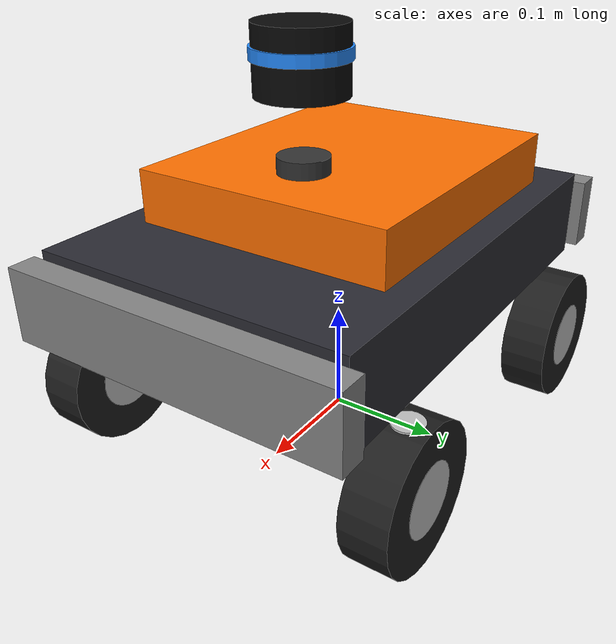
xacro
<?xml version="1.0"?>
<robot xmlns:xacro="http://www.ros.org/wiki/xacro" name="morphonav">

  <!-- ═══════════════════════════════════════════════
       ROBOT DIMENSIONS
       ═══════════════════════════════════════════════ -->
  <xacro:property name="chassis_l"    value="0.40"/>
  <xacro:property name="chassis_w"    value="0.28"/>
  <xacro:property name="chassis_h"    value="0.08"/>
  <xacro:property name="chassis_mass" value="4.0"/>

  <xacro:property name="wheel_r"    value="0.06"/>
  <xacro:property name="wheel_w"    value="0.04"/>
  <xacro:property name="wheel_mass" value="0.3"/>

  <xacro:property name="wheelbase"   value="0.28"/>
  <xacro:property name="track_width" value="0.30"/>
  <xacro:property name="steer_limit" value="0.6"/>

  <!-- chassis_z MUST equal 2*wheel_r + chassis_h/2 so tyres rest on ground.
       Previous value was 0.12 — wheels were 4 cm underground. -->
  <xacro:property name="chassis_z" value="${2*wheel_r + chassis_h/2}"/>

  <!-- ═══════════════════════════════════════════════
       MACROS
       ═══════════════════════════════════════════════ -->

  <!-- Wheel link: dark tyre + two silver hub discs for visual depth -->
  <xacro:macro name="wheel_link" params="name">
    <link name="${name}">
      <!-- outer tyre -->
      <visual>
        <geometry><cylinder radius="${wheel_r}" length="${wheel_w}"/></geometry>
        <origin xyz="0 0 0" rpy="${pi/2} 0 0"/>
        <material name="rubber"><color rgba="0.12 0.12 0.12 1.0"/></material>
      </visual>
      <!-- inner hub disc (positive Y face) -->
      <visual>
        <geometry><cylinder radius="${wheel_r*0.50}" length="${wheel_w*0.35}"/></geometry>
        <origin xyz="0 ${wheel_w*0.33} 0" rpy="${pi/2} 0 0"/>
        <material name="hub_silver"><color rgba="0.78 0.78 0.78 1.0"/></material>
      </visual>
      <!-- inner hub disc (negative Y face) -->
      <visual>
        <geometry><cylinder radius="${wheel_r*0.50}" length="${wheel_w*0.35}"/></geometry>
        <origin xyz="0 ${-wheel_w*0.33} 0" rpy="${pi/2} 0 0"/>
        <material name="hub_silver2"><color rgba="0.78 0.78 0.78 1.0"/></material>
      </visual>
      <collision>
        <geometry><cylinder radius="${wheel_r}" length="${wheel_w}"/></geometry>
        <origin xyz="0 0 0" rpy="${pi/2} 0 0"/>
      </collision>
      <inertial>
        <mass value="${wheel_mass}"/>
        <!-- solid cylinder, rolling axis = Y -->
        <inertia
          ixx="${wheel_mass*(3*wheel_r*wheel_r + wheel_w*wheel_w)/12}"
          iyy="${wheel_mass*wheel_r*wheel_r/2}"
          izz="${wheel_mass*(3*wheel_r*wheel_r + wheel_w*wheel_w)/12}"
          ixy="0" ixz="0" iyz="0"/>
      </inertial>
    </link>
  </xacro:macro>

  <!-- Steering hub: visible kingpin axle from pivot to wheel centre -->
  <xacro:macro name="steer_link" params="name">
    <link name="${name}">
      <visual>
        <geometry><cylinder radius="0.013" length="${wheel_r}"/></geometry>
        <origin xyz="0 0 ${-wheel_r/2}" rpy="0 0 0"/>
        <material name="axle_silver"><color rgba="0.75 0.75 0.75 1.0"/></material>
      </visual>
      <collision>
        <geometry><cylinder radius="0.013" length="${wheel_r}"/></geometry>
        <origin xyz="0 0 ${-wheel_r/2}" rpy="0 0 0"/>
      </collision>
      <inertial>
        <mass value="0.05"/>
        <inertia ixx="0.00002" iyy="0.00002" izz="0.00002"
                 ixy="0" ixz="0" iyz="0"/>
      </inertial>
    </link>
  </xacro:macro>

  <!-- ═══════════════════════════════════════════════
       BASE FRAMES
       ═══════════════════════════════════════════════ -->

  <link name="base_footprint"/>

  <joint name="base_joint" type="fixed">
    <parent link="base_footprint"/>
    <child  link="base_link"/>
    <origin xyz="0 0 ${chassis_z}" rpy="0 0 0"/>
  </joint>

  <!-- Main chassis: dark body + orange accent panel + front/rear bumper strips -->
  <link name="base_link">
    <!-- lower chassis plate -->
    <visual>
      <geometry><box size="${chassis_l} ${chassis_w} ${chassis_h}"/></geometry>
      <origin xyz="0 0 0" rpy="0 0 0"/>
      <material name="chassis_body"><color rgba="0.17 0.17 0.20 1.0"/></material>
    </visual>
    <!-- orange accent panel on top -->
    <visual>
      <geometry><box size="${chassis_l*0.68} ${chassis_w*0.82} 0.046"/></geometry>
      <origin xyz="-0.02 0 ${chassis_h/2 + 0.023}" rpy="0 0 0"/>
      <material name="accent"><color rgba="1.0 0.44 0.0 1.0"/></material>
    </visual>
    <!-- front bumper strip -->
    <visual>
      <geometry><box size="0.024 ${chassis_w + 0.022} ${chassis_h*0.80}"/></geometry>
      <origin xyz="${chassis_l/2 + 0.012} 0 0" rpy="0 0 0"/>
      <material name="bumper"><color rgba="0.52 0.52 0.52 1.0"/></material>
    </visual>
    <!-- rear bumper strip -->
    <visual>
      <geometry><box size="0.024 ${chassis_w + 0.022} ${chassis_h*0.80}"/></geometry>
      <origin xyz="${-chassis_l/2 - 0.012} 0 0" rpy="0 0 0"/>
      <material name="bumper2"><color rgba="0.52 0.52 0.52 1.0"/></material>
    </visual>
    <!-- lidar pedestal post -->
    <visual>
      <geometry><cylinder radius="0.022" length="0.06"/></geometry>
      <origin xyz="0.05 0 ${chassis_h/2 + 0.03}" rpy="0 0 0"/>
      <material name="pedestal"><color rgba="0.20 0.20 0.20 1.0"/></material>
    </visual>
    <!-- single collision box for whole chassis -->
    <collision>
      <geometry><box size="${chassis_l + 0.05} ${chassis_w + 0.022} ${chassis_h}"/></geometry>
    </collision>
    <inertial>
      <mass value="${chassis_mass}"/>
      <origin xyz="0 0 0"/>
      <inertia
        ixx="${chassis_mass*(chassis_w*chassis_w + chassis_h*chassis_h)/12}"
        iyy="${chassis_mass*(chassis_l*chassis_l + chassis_h*chassis_h)/12}"
        izz="${chassis_mass*(chassis_l*chassis_l + chassis_w*chassis_w)/12}"
        ixy="0" ixz="0" iyz="0"/>
    </inertial>
  </link>

  <!-- ═══════════════════════════════════════════════
       FRONT LEFT — steering pivot + wheel
       ═══════════════════════════════════════════════ -->
  <joint name="front_left_steer_joint" type="revolute">
    <parent link="base_link"/>
    <child  link="front_left_steer"/>
    <origin xyz="${wheelbase/2} ${track_width/2} ${-chassis_h/2}" rpy="0 0 0"/>
    <axis xyz="0 0 1"/>
    <limit lower="${-steer_limit}" upper="${steer_limit}" effort="10.0" velocity="2.0"/>
  </joint>
  <xacro:steer_link name="front_left_steer"/>

  <joint name="front_left_wheel_joint" type="continuous">
    <parent link="front_left_steer"/>
    <child  link="front_left_wheel"/>
    <origin xyz="0 0 ${-wheel_r}" rpy="0 0 0"/>
    <axis xyz="0 1 0"/>
  </joint>
  <xacro:wheel_link name="front_left_wheel"/>

  <!-- ═══════════════════════════════════════════════
       FRONT RIGHT — mirror of front left
       ═══════════════════════════════════════════════ -->
  <joint name="front_right_steer_joint" type="revolute">
    <parent link="base_link"/>
    <child  link="front_right_steer"/>
    <origin xyz="${wheelbase/2} ${-track_width/2} ${-chassis_h/2}" rpy="0 0 0"/>
    <axis xyz="0 0 1"/>
    <limit lower="${-steer_limit}" upper="${steer_limit}" effort="10.0" velocity="2.0"/>
  </joint>
  <xacro:steer_link name="front_right_steer"/>

  <joint name="front_right_wheel_joint" type="continuous">
    <parent link="front_right_steer"/>
    <child  link="front_right_wheel"/>
    <origin xyz="0 0 ${-wheel_r}" rpy="0 0 0"/>
    <axis xyz="0 1 0"/>
  </joint>
  <xacro:wheel_link name="front_right_wheel"/>

  <!-- ═══════════════════════════════════════════════
       REAR LEFT — drive wheel
       ═══════════════════════════════════════════════ -->
  <joint name="rear_left_wheel_joint" type="continuous">
    <parent link="base_link"/>
    <child  link="rear_left_wheel"/>
    <origin xyz="${-wheelbase/2} ${track_width/2} ${-chassis_h/2 - wheel_r}" rpy="0 0 0"/>
    <axis xyz="0 1 0"/>
  </joint>
  <xacro:wheel_link name="rear_left_wheel"/>

  <!-- ═══════════════════════════════════════════════
       REAR RIGHT — drive wheel
       ═══════════════════════════════════════════════ -->
  <joint name="rear_right_wheel_joint" type="continuous">
    <parent link="base_link"/>
    <child  link="rear_right_wheel"/>
    <origin xyz="${-wheelbase/2} ${-track_width/2} ${-chassis_h/2 - wheel_r}" rpy="0 0 0"/>
    <axis xyz="0 1 0"/>
  </joint>
  <xacro:wheel_link name="rear_right_wheel"/>

  <!-- ═══════════════════════════════════════════════
       LIDAR — on pedestal above body panel
       ═══════════════════════════════════════════════ -->
  <joint name="laser_joint" type="fixed">
    <parent link="base_link"/>
    <child  link="laser_frame"/>
    <!-- pedestal top = chassis_h/2 + 0.046 (panel) + 0.06 (post) + 0.028 (half lidar) -->
    <origin xyz="0.05 0 ${chassis_h/2 + 0.046 + 0.06 + 0.028}" rpy="0 0 0"/>
  </joint>

  <link name="laser_frame">
    <visual>
      <geometry><cylinder radius="0.038" length="0.055"/></geometry>
      <origin xyz="0 0 0" rpy="0 0 0"/>
      <material name="lidar_body"><color rgba="0.04 0.04 0.04 1.0"/></material>
    </visual>
    <!-- scanning ring highlight -->
    <visual>
      <geometry><cylinder radius="0.040" length="0.010"/></geometry>
      <origin xyz="0 0 0.005" rpy="0 0 0"/>
      <material name="lidar_ring"><color rgba="0.15 0.55 1.0 1.0"/></material>
    </visual>
    <collision>
      <geometry><cylinder radius="0.038" length="0.055"/></geometry>
    </collision>
    <inertial>
      <mass value="0.15"/>
      <inertia ixx="0.0002" iyy="0.0002" izz="0.0002"
               ixy="0" ixz="0" iyz="0"/>
    </inertial>
  </link>

  <!-- ═══════════════════════════════════════════════
       GAZEBO — Wheel friction & appearance
       ═══════════════════════════════════════════════ -->
  <gazebo reference="rear_left_wheel">
    <material>Gazebo/FlatBlack</material>
    <mu1>1.2</mu1><mu2>0.9</mu2>
    <kp>1000000.0</kp><kd>1.0</kd>
  </gazebo>
  <gazebo reference="rear_right_wheel">
    <material>Gazebo/FlatBlack</material>
    <mu1>1.2</mu1><mu2>0.9</mu2>
    <kp>1000000.0</kp><kd>1.0</kd>
  </gazebo>
  <gazebo reference="front_left_wheel">
    <material>Gazebo/FlatBlack</material>
    <mu1>0.8</mu1><mu2>0.6</mu2>
  </gazebo>
  <gazebo reference="front_right_wheel">
    <material>Gazebo/FlatBlack</material>
    <mu1>0.8</mu1><mu2>0.6</mu2>
  </gazebo>
  <gazebo reference="base_link">
    <material>Gazebo/DarkGrey</material>
  </gazebo>

  <!-- ═══════════════════════════════════════════════
       GAZEBO — Lidar sensor (360°, 10 Hz, 0.2–12 m)
       ═══════════════════════════════════════════════ -->
  <gazebo reference="laser_frame">
    <sensor type="ray" name="rplidar_sim">
      <pose>0 0 0 0 0 0</pose>
      <visualize>false</visualize>
      <update_rate>10</update_rate>
      <ray>
        <scan>
          <horizontal>
            <samples>360</samples>
            <resolution>1</resolution>
            <min_angle>-3.14159</min_angle>
            <max_angle>3.14159</max_angle>
          </horizontal>
        </scan>
        <range>
          <min>0.20</min>
          <max>12.0</max>
          <resolution>0.01</resolution>
        </range>
        <noise>
          <type>gaussian</type>
          <mean>0.0</mean>
          <stddev>0.01</stddev>
        </noise>
      </ray>
      <plugin name="gazebo_ros_lidar" filename="libgazebo_ros_ray_sensor.so">
        <ros>
          <remapping>~/out:=/scan</remapping>
        </ros>
        <output_type>sensor_msgs/LaserScan</output_type>
        <frame_name>laser_frame</frame_name>
      </plugin>
    </sensor>
  </gazebo>

  <gazebo>
    <plugin name="diff_drive" filename="libgazebo_ros_diff_drive.so">
      <update_rate>50</update_rate>

      <left_joint>rear_left_wheel_joint</left_joint>
      <right_joint>rear_right_wheel_joint</right_joint>

      <wheel_separation>${track_width}</wheel_separation>
      <wheel_radius>${wheel_r}</wheel_radius>

      <max_wheel_torque>20.0</max_wheel_torque>
      <max_wheel_acceleration>1.0</max_wheel_acceleration>

      <!-- use relative names (no leading slash) — resolved to /cmd_vel, /odom -->
      <command_topic>cmd_vel</command_topic>
      <odometry_topic>odom</odometry_topic>

      <odometry_frame>odom</odometry_frame>
      <robot_base_frame>base_footprint</robot_base_frame>

      <publish_odom>true</publish_odom>
      <publish_odom_tf>true</publish_odom_tf>
      <publish_wheel_tf>false</publish_wheel_tf>
    </plugin>
  </gazebo>

  <gazebo>
    <plugin name="joint_state_publisher"
            filename="libgazebo_ros_joint_state_publisher.so">
      <update_rate>30</update_rate>
      <joint_name>rear_left_wheel_joint</joint_name>
      <joint_name>rear_right_wheel_joint</joint_name>
      <joint_name>front_left_steer_joint</joint_name>
      <joint_name>front_right_steer_joint</joint_name>
      <joint_name>front_left_wheel_joint</joint_name>
      <joint_name>front_right_wheel_joint</joint_name>
    </plugin>
  </gazebo>

</robot>
